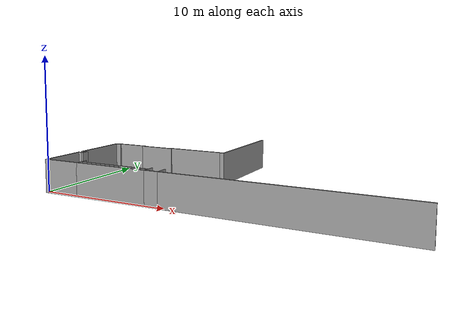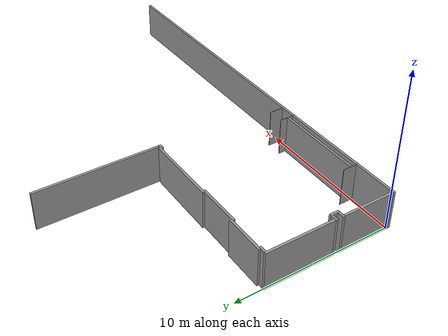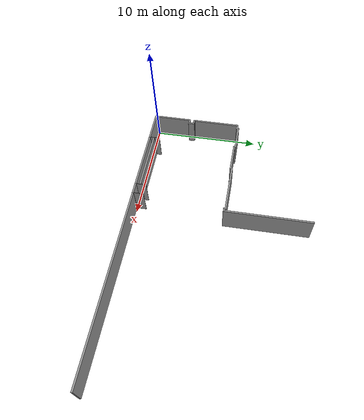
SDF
<?xml version='1.0'?>
<sdf version='1.6'>
  <model name='hoodcourt_not_pillar'>
    <pose frame=''>13.2775 7.925 0 0 -0 0</pose>
    <link name='Wall_12'>
      <collision name='Wall_12_Collision'>
        <geometry>
          <box>
            <size>2.95 0.15 2.5</size>
          </box>
        </geometry>
        <pose frame=''>0 0 1.25 0 -0 0</pose>
      </collision>
      <visual name='Wall_12_Visual'>
        <pose frame=''>0 0 1.25 0 -0 0</pose>
        <geometry>
          <box>
            <size>2.95 0.15 2.5</size>
          </box>
        </geometry>
        <material>
          <script>
            <uri>file://media/materials/scripts/gazebo.material</uri>
            <name>Gazebo/Grey</name>
          </script>
          <ambient>1 1 1 1</ambient>
        </material>
      </visual>
      <pose frame=''>-11.8775 -8.075 0 0 -0 0</pose>
    </link>
    <link name='Wall_17'>
      <collision name='Wall_17_Collision'>
        <geometry>
          <box>
            <size>3.35 0.15 2.5</size>
          </box>
        </geometry>
        <pose frame=''>0 0 1.25 0 -0 0</pose>
      </collision>
      <visual name='Wall_17_Visual'>
        <pose frame=''>0 0 1.25 0 -0 0</pose>
        <geometry>
          <box>
            <size>3.35 0.15 2.5</size>
          </box>
        </geometry>
        <material>
          <script>
            <uri>file://media/materials/scripts/gazebo.material</uri>
            <name>Gazebo/Grey</name>
          </script>
          <ambient>1 1 1 1</ambient>
        </material>
      </visual>
      <pose frame=''>-13.2775 -6.325 0 0 -0 1.5708</pose>
    </link>
    <link name='Wall_19'>
      <collision name='Wall_19_Collision'>
        <geometry>
          <box>
            <size>0.41 0.15 2.5</size>
          </box>
        </geometry>
        <pose frame=''>0 0 1.25 0 -0 0</pose>
      </collision>
      <visual name='Wall_19_Visual'>
        <pose frame=''>0 0 1.25 0 -0 0</pose>
        <geometry>
          <box>
            <size>0.41 0.15 2.5</size>
          </box>
        </geometry>
        <material>
          <script>
            <uri>file://media/materials/scripts/gazebo.material</uri>
            <name>Gazebo/Grey</name>
          </script>
          <ambient>1 1 1 1</ambient>
        </material>
      </visual>
      <pose frame=''>-13.1475 -4.575 0 0 -0 0</pose>
    </link>
    <link name='Wall_21'>
      <collision name='Wall_21_Collision'>
        <geometry>
          <box>
            <size>0.41 0.15 2.5</size>
          </box>
        </geometry>
        <pose frame=''>0 0 1.25 0 -0 0</pose>
      </collision>
      <visual name='Wall_21_Visual'>
        <pose frame=''>0 0 1.25 0 -0 0</pose>
        <geometry>
          <box>
            <size>0.41 0.15 2.5</size>
          </box>
        </geometry>
        <material>
          <script>
            <uri>file://media/materials/scripts/gazebo.material</uri>
            <name>Gazebo/Grey</name>
          </script>
          <ambient>1 1 1 1</ambient>
        </material>
      </visual>
      <pose frame=''>-13.1475 -4.125 0 0 -0 0</pose>
    </link>
    <link name='Wall_30'>
      <collision name='Wall_30_Collision'>
        <geometry>
          <box>
            <size>0.6 0.15 2.5</size>
          </box>
        </geometry>
        <pose frame=''>0 0 1.25 0 -0 0</pose>
      </collision>
      <visual name='Wall_30_Visual'>
        <pose frame=''>0 0 1.25 0 -0 0</pose>
        <geometry>
          <box>
            <size>0.6 0.15 2.5</size>
          </box>
        </geometry>
        <material>
          <script>
            <uri>file://media/materials/scripts/gazebo.material</uri>
            <name>Gazebo/Grey</name>
          </script>
          <ambient>1 1 1 1</ambient>
        </material>
      </visual>
      <pose frame=''>-12.8675 -4.35 0 0 -0 1.5708</pose>
    </link>
    <link name='Wall_33'>
      <collision name='Wall_33_Collision'>
        <geometry>
          <box>
            <size>4.5 0.15 2.5</size>
          </box>
        </geometry>
        <pose frame=''>0 0 1.25 0 -0 0</pose>
      </collision>
      <visual name='Wall_33_Visual'>
        <pose frame=''>0 0 1.25 0 -0 0</pose>
        <geometry>
          <box>
            <size>4.5 0.15 2.5</size>
          </box>
        </geometry>
        <material>
          <script>
            <uri>file://media/materials/scripts/gazebo.material</uri>
            <name>Gazebo/Grey</name>
          </script>
          <ambient>1 1 1 1</ambient>
        </material>
      </visual>
      <pose frame=''>-13.2775 -1.9 0 0 -0 1.5708</pose>
    </link>
    <link name='Wall_39'>
      <collision name='Wall_39_Collision'>
        <geometry>
          <box>
            <size>2.56 0.15 2.5</size>
          </box>
        </geometry>
        <pose frame=''>0 0 1.25 0 -0 0</pose>
      </collision>
      <visual name='Wall_39_Visual'>
        <pose frame=''>0 0 1.25 0 -0 0</pose>
        <geometry>
          <box>
            <size>2.56 0.15 2.5</size>
          </box>
        </geometry>
        <material>
          <script>
            <uri>file://media/materials/scripts/gazebo.material</uri>
            <name>Gazebo/Grey</name>
          </script>
          <ambient>1 1 1 1</ambient>
        </material>
      </visual>
      <pose frame=''>-11.6575 0.394999 0 0 -0 0</pose>
    </link>
    <link name='Wall_50'>
      <collision name='Wall_50_Collision'>
        <geometry>
          <box>
            <size>0.415 0.15 2.5</size>
          </box>
        </geometry>
        <pose frame=''>0 0 1.25 0 -0 0</pose>
      </collision>
      <visual name='Wall_50_Visual'>
        <pose frame=''>0 0 1.25 0 -0 0</pose>
        <geometry>
          <box>
            <size>0.415 0.15 2.5</size>
          </box>
        </geometry>
        <material>
          <script>
            <uri>file://media/materials/scripts/gazebo.material</uri>
            <name>Gazebo/Grey</name>
          </script>
          <ambient>1 1 1 1</ambient>
        </material>
      </visual>
      <pose frame=''>-12.995 0.274999 0 0 -0 0</pose>
    </link>
    <link name='Wall_52'>
      <collision name='Wall_52_Collision'>
        <geometry>
          <box>
            <size>2.81 0.15 2.5</size>
          </box>
        </geometry>
        <pose frame=''>0 0 1.25 0 -0 0</pose>
      </collision>
      <visual name='Wall_52_Visual'>
        <pose frame=''>0 0 1.25 0 -0 0</pose>
        <geometry>
          <box>
            <size>2.81 0.15 2.5</size>
          </box>
        </geometry>
        <material>
          <script>
            <uri>file://media/materials/scripts/gazebo.material</uri>
            <name>Gazebo/Grey</name>
          </script>
          <ambient>1 1 1 1</ambient>
        </material>
      </visual>
      <pose frame=''>-9.1225 0.274999 0 0 -0 0</pose>
    </link>
    <link name='Wall_54'>
      <collision name='Wall_54_Collision'>
        <geometry>
          <box>
            <size>4.73 0.15 2.5</size>
          </box>
        </geometry>
        <pose frame=''>0 0 1.25 0 -0 0</pose>
      </collision>
      <visual name='Wall_54_Visual'>
        <pose frame=''>0 0 1.25 0 -0 0</pose>
        <geometry>
          <box>
            <size>4.73 0.15 2.5</size>
          </box>
        </geometry>
        <material>
          <script>
            <uri>file://media/materials/scripts/gazebo.material</uri>
            <name>Gazebo/Grey</name>
          </script>
          <ambient>1 1 1 1</ambient>
        </material>
      </visual>
      <pose frame=''>-5.5025 0.394999 0 0 -0 0</pose>
    </link>
    <link name='Wall_56'>
      <collision name='Wall_56_Collision'>
        <geometry>
          <box>
            <size>0.365 0.15 2.5</size>
          </box>
        </geometry>
        <pose frame=''>0 0 1.25 0 -0 0</pose>
      </collision>
      <visual name='Wall_56_Visual'>
        <pose frame=''>0 0 1.25 0 -0 0</pose>
        <geometry>
          <box>
            <size>0.365 0.15 2.5</size>
          </box>
        </geometry>
        <material>
          <script>
            <uri>file://media/materials/scripts/gazebo.material</uri>
            <name>Gazebo/Grey</name>
          </script>
          <ambient>1 1 1 1</ambient>
        </material>
      </visual>
      <pose frame=''>-3.105 0.274999 0 0 -0 0</pose>
    </link>
    <link name='Wall_58'>
      <collision name='Wall_58_Collision'>
        <geometry>
          <box>
            <size>7.95 0.15 2.5</size>
          </box>
        </geometry>
        <pose frame=''>0 0 1.25 0 -0 0</pose>
      </collision>
      <visual name='Wall_58_Visual'>
        <pose frame=''>0 0 1.25 0 -0 0</pose>
        <geometry>
          <box>
            <size>7.95 0.15 2.5</size>
          </box>
        </geometry>
        <material>
          <script>
            <uri>file://media/materials/scripts/gazebo.material</uri>
            <name>Gazebo/Grey</name>
          </script>
          <ambient>1 1 1 1</ambient>
        </material>
      </visual>
      <pose frame=''>-2.9975 4.175 0 0 -0 1.5708</pose>
    </link>
    <link name='Wall_62'>
      <collision name='Wall_62_Collision'>
        <geometry>
          <box>
            <size>0.9 0.04 2.5</size>
          </box>
        </geometry>
        <pose frame=''>0 0 1.25 0 -0 0</pose>
      </collision>
      <visual name='Wall_62_Visual'>
        <pose frame=''>0 0 1.25 0 -0 0</pose>
        <geometry>
          <box>
            <size>0.9 0.04 2.5</size>
          </box>
        </geometry>
        <material>
          <script>
            <uri>file://media/materials/scripts/gazebo.material</uri>
            <name>Gazebo/Grey</name>
          </script>
          <ambient>1 1 1 1</ambient>
        </material>
      </visual>
      <pose frame=''>-10.42 -7.545 0 0 -0 1.56731</pose>
    </link>
    <link name='Wall_64'>
      <collision name='Wall_64_Collision'>
        <geometry>
          <box>
            <size>5.745 0.15 2.5</size>
          </box>
        </geometry>
        <pose frame=''>0 0 1.25 0 -0 0</pose>
      </collision>
      <visual name='Wall_64_Visual'>
        <pose frame=''>0 0 1.25 0 -0 0</pose>
        <geometry>
          <box>
            <size>5.745 0.15 2.5</size>
          </box>
        </geometry>
        <material>
          <script>
            <uri>file://media/materials/scripts/gazebo.material</uri>
            <name>Gazebo/Grey</name>
          </script>
          <ambient>1 1 1 1</ambient>
        </material>
      </visual>
      <pose frame=''>-7.575 -8.075 0 0 -0 0</pose>
    </link>
    <link name='Wall_66'>
      <collision name='Wall_66_Collision'>
        <geometry>
          <box>
            <size>5.7 0.15 2.5</size>
          </box>
        </geometry>
        <pose frame=''>0 0 1.25 0 -0 0</pose>
      </collision>
      <visual name='Wall_66_Visual'>
        <pose frame=''>0 0 1.25 0 -0 0</pose>
        <geometry>
          <box>
            <size>5.7 0.15 2.5</size>
          </box>
        </geometry>
        <material>
          <script>
            <uri>file://media/materials/scripts/gazebo.material</uri>
            <name>Gazebo/Grey</name>
          </script>
          <ambient>1 1 1 1</ambient>
        </material>
      </visual>
      <pose frame=''>-7.5525 -7.655 0 0 -0 0</pose>
    </link>
    <link name='Wall_68'>
      <collision name='Wall_68_Collision'>
        <geometry>
          <box>
            <size>0.9 0.04 2.5</size>
          </box>
        </geometry>
        <pose frame=''>0 0 1.25 0 -0 0</pose>
      </collision>
      <visual name='Wall_68_Visual'>
        <pose frame=''>0 0 1.25 0 -0 0</pose>
        <geometry>
          <box>
            <size>0.9 0.04 2.5</size>
          </box>
        </geometry>
        <material>
          <script>
            <uri>file://media/materials/scripts/gazebo.material</uri>
            <name>Gazebo/Grey</name>
          </script>
          <ambient>1 1 1 1</ambient>
        </material>
      </visual>
      <pose frame=''>-4.6855 -7.545 0 0 -0 1.5708</pose>
    </link>
    <link name='Wall_70'>
      <collision name='Wall_70_Collision'>
        <geometry>
          <box>
            <size>0.9 0.04 2.5</size>
          </box>
        </geometry>
        <pose frame=''>0 0 1.25 0 -0 0</pose>
      </collision>
      <visual name='Wall_70_Visual'>
        <pose frame=''>0 0 1.25 0 -0 0</pose>
        <geometry>
          <box>
            <size>0.9 0.04 2.5</size>
          </box>
        </geometry>
        <material>
          <script>
            <uri>file://media/materials/scripts/gazebo.material</uri>
            <name>Gazebo/Grey</name>
          </script>
          <ambient>1 1 1 1</ambient>
        </material>
      </visual>
      <pose frame=''>-3.6655 -7.545 0 0 -0 1.5708</pose>
    </link>
    <link name='Wall_72'>
      <collision name='Wall_72_Collision'>
        <geometry>
          <box>
            <size>1.06 0.15 2.5</size>
          </box>
        </geometry>
        <pose frame=''>0 0 1.25 0 -0 0</pose>
      </collision>
      <visual name='Wall_72_Visual'>
        <pose frame=''>0 0 1.25 0 -0 0</pose>
        <geometry>
          <box>
            <size>1.06 0.15 2.5</size>
          </box>
        </geometry>
        <material>
          <script>
            <uri>file://media/materials/scripts/gazebo.material</uri>
            <name>Gazebo/Grey</name>
          </script>
          <ambient>1 1 1 1</ambient>
        </material>
      </visual>
      <pose frame=''>-4.1765 -8.075 0 0 -0 0</pose>
    </link>
    <link name='Wall_74'>
      <collision name='Wall_74_Collision'>
        <geometry>
          <box>
            <size>17 0.15 2.5</size>
          </box>
        </geometry>
        <pose frame=''>0 0 1.25 0 -0 0</pose>
      </collision>
      <visual name='Wall_74_Visual'>
        <pose frame=''>0 0 1.25 0 -0 0</pose>
        <geometry>
          <box>
            <size>17 0.15 2.5</size>
          </box>
        </geometry>
        <material>
          <script>
            <uri>file://media/materials/scripts/gazebo.material</uri>
            <name>Gazebo/Grey</name>
          </script>
          <ambient>1 1 1 1</ambient>
        </material>
      </visual>
      <pose frame=''>4.8525 -8.075 0 0 -0 0</pose>
    </link>
    <static>1</static>
  </model>
</sdf>
